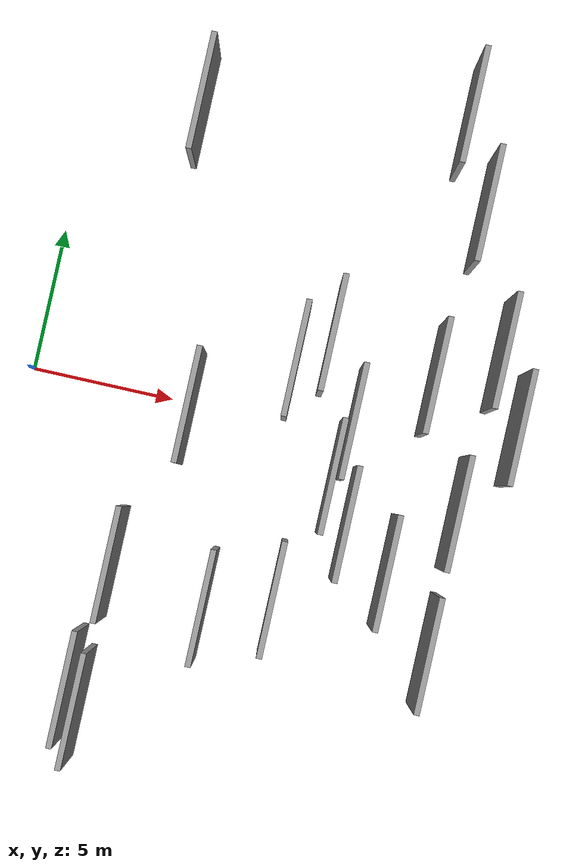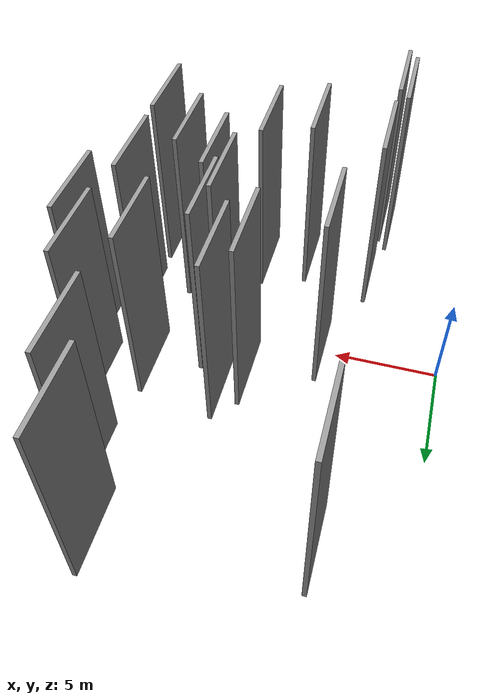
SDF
<sdf version="1.6">
 <world name="default">
  <scene>
   <sky><clouds><speed>12</speed></clouds></sky>
   <ambient>0.4 0.4 0.4 1</ambient>
   <background>0.7 0.7 0.7 1</background>
   <shadows>1</shadows>
  </scene>
  <gravity>0 0 -9.8066</gravity>
  <magnetic_field>6e-06 2.3e-05 -4.2e-05</magnetic_field>
  <physics default="0" name="default_physics" type="ode">
   <ode>
    <solver>
     <type>quick</type>
     <iters>10</iters>
     <sor>1.0</sor>
     <use_dynamic_moi_rescaling>0</use_dynamic_moi_rescaling>
    </solver>
    <constraints>
     <cfm>0</cfm>
     <erp>0.2</erp>
     <contact_max_correcting_vel>100</contact_max_correcting_vel>
     <contact_surface_layer>0.001</contact_surface_layer>
    </constraints>
   </ode>
   <max_step_size>0.004</max_step_size>
   <real_time_factor>1</real_time_factor>
   <real_time_update_rate>250</real_time_update_rate>
  </physics>
  <light name="sun" type="directional">
   <pose>0 0 10 0 0 0</pose>
   <diffuse>0.8 0.8 0.8 1</diffuse>
   <specular>0.2 0.2 0.2 1</specular>
   <attenuation>
    <range>1000</range>
    <constant>0.9</constant>
    <linear>0.01</linear>
    <quadratic>0.001</quadratic>
   </attenuation>
   <direction>-0.5 0.1 -0.9</direction>
  </light>
  <model name="grey_wall_1">
   <static>1</static>
   <pose>13.7205 2.5976 0.0 0.000000 0.000000 1.570796</pose>
   <link name="link">
    <pose>0 0 5.00 0 0 0</pose>
    <collision name="collision"><geometry><box><size>4.00 0.2 10.00</size></box></geometry></collision>
    <visual name="visual">
     <cast_shadows>0</cast_shadows>
     <geometry><box><size>4.00 0.2 10.00</size></box></geometry>
     <material>
      <script>
       <uri>model://grey_wall/materials/scripts</uri>
       <uri>model://grey_wall/materials/textures</uri>
       <name>vrc/grey_wall</name>
      </script>
     </material>
    </visual>
   </link>
  </model>
  <model name="grey_wall_2">
   <static>1</static>
   <pose>16.8466 1.5013 0.0 0.000000 0.000000 1.570796</pose>
   <link name="link">
    <pose>0 0 5.00 0 0 0</pose>
    <collision name="collision"><geometry><box><size>4.00 0.2 10.00</size></box></geometry></collision>
    <visual name="visual">
     <cast_shadows>0</cast_shadows>
     <geometry><box><size>4.00 0.2 10.00</size></box></geometry>
     <material>
      <script>
       <uri>model://grey_wall/materials/scripts</uri>
       <uri>model://grey_wall/materials/textures</uri>
       <name>vrc/grey_wall</name>
      </script>
     </material>
    </visual>
   </link>
  </model>
  <model name="grey_wall_3">
   <static>1</static>
   <pose>9.9424 -5.9270 0.0 0.000000 0.000000 1.570796</pose>
   <link name="link">
    <pose>0 0 5.00 0 0 0</pose>
    <collision name="collision"><geometry><box><size>4.00 0.2 10.00</size></box></geometry></collision>
    <visual name="visual">
     <cast_shadows>0</cast_shadows>
     <geometry><box><size>4.00 0.2 10.00</size></box></geometry>
     <material>
      <script>
       <uri>model://grey_wall/materials/scripts</uri>
       <uri>model://grey_wall/materials/textures</uri>
       <name>vrc/grey_wall</name>
      </script>
     </material>
    </visual>
   </link>
  </model>
  <model name="grey_wall_4">
   <static>1</static>
   <pose>5.7435 -0.1744 0.0 0.000000 0.000000 1.570796</pose>
   <link name="link">
    <pose>0 0 5.00 0 0 0</pose>
    <collision name="collision"><geometry><box><size>4.00 0.2 10.00</size></box></geometry></collision>
    <visual name="visual">
     <cast_shadows>0</cast_shadows>
     <geometry><box><size>4.00 0.2 10.00</size></box></geometry>
     <material>
      <script>
       <uri>model://grey_wall/materials/scripts</uri>
       <uri>model://grey_wall/materials/textures</uri>
       <name>vrc/grey_wall</name>
      </script>
     </material>
    </visual>
   </link>
  </model>
  <model name="grey_wall_5">
   <static>1</static>
   <pose>12.9524 11.7028 0.0 0.000000 0.000000 1.570796</pose>
   <link name="link">
    <pose>0 0 5.00 0 0 0</pose>
    <collision name="collision"><geometry><box><size>4.00 0.2 10.00</size></box></geometry></collision>
    <visual name="visual">
     <cast_shadows>0</cast_shadows>
     <geometry><box><size>4.00 0.2 10.00</size></box></geometry>
     <material>
      <script>
       <uri>model://grey_wall/materials/scripts</uri>
       <uri>model://grey_wall/materials/textures</uri>
       <name>vrc/grey_wall</name>
      </script>
     </material>
    </visual>
   </link>
  </model>
  <model name="grey_wall_6">
   <static>1</static>
   <pose>7.6847 -6.7160 0.0 0.000000 0.000000 1.570796</pose>
   <link name="link">
    <pose>0 0 5.00 0 0 0</pose>
    <collision name="collision"><geometry><box><size>4.00 0.2 10.00</size></box></geometry></collision>
    <visual name="visual">
     <cast_shadows>0</cast_shadows>
     <geometry><box><size>4.00 0.2 10.00</size></box></geometry>
     <material>
      <script>
       <uri>model://grey_wall/materials/scripts</uri>
       <uri>model://grey_wall/materials/textures</uri>
       <name>vrc/grey_wall</name>
      </script>
     </material>
    </visual>
   </link>
  </model>
  <model name="grey_wall_7">
   <static>1</static>
   <pose>11.8424 -2.9235 0.0 0.000000 0.000000 1.570796</pose>
   <link name="link">
    <pose>0 0 5.00 0 0 0</pose>
    <collision name="collision"><geometry><box><size>4.00 0.2 10.00</size></box></geometry></collision>
    <visual name="visual">
     <cast_shadows>0</cast_shadows>
     <geometry><box><size>4.00 0.2 10.00</size></box></geometry>
     <material>
      <script>
       <uri>model://grey_wall/materials/scripts</uri>
       <uri>model://grey_wall/materials/textures</uri>
       <name>vrc/grey_wall</name>
      </script>
     </material>
    </visual>
   </link>
  </model>
  <model name="grey_wall_8">
   <static>1</static>
   <pose>15.4231 -1.7633 0.0 0.000000 0.000000 1.570796</pose>
   <link name="link">
    <pose>0 0 5.00 0 0 0</pose>
    <collision name="collision"><geometry><box><size>4.00 0.2 10.00</size></box></geometry></collision>
    <visual name="visual">
     <cast_shadows>0</cast_shadows>
     <geometry><box><size>4.00 0.2 10.00</size></box></geometry>
     <material>
      <script>
       <uri>model://grey_wall/materials/scripts</uri>
       <uri>model://grey_wall/materials/textures</uri>
       <name>vrc/grey_wall</name>
      </script>
     </material>
    </visual>
   </link>
  </model>
  <model name="grey_wall_9">
   <static>1</static>
   <pose>15.4708 -6.6185 0.0 0.000000 0.000000 1.570796</pose>
   <link name="link">
    <pose>0 0 5.00 0 0 0</pose>
    <collision name="collision"><geometry><box><size>4.00 0.2 10.00</size></box></geometry></collision>
    <visual name="visual">
     <cast_shadows>0</cast_shadows>
     <geometry><box><size>4.00 0.2 10.00</size></box></geometry>
     <material>
      <script>
       <uri>model://grey_wall/materials/scripts</uri>
       <uri>model://grey_wall/materials/textures</uri>
       <name>vrc/grey_wall</name>
      </script>
     </material>
    </visual>
   </link>
  </model>
  <model name="grey_wall_10">
   <static>1</static>
   <pose>14.1570 8.5987 0.0 0.000000 0.000000 1.570796</pose>
   <link name="link">
    <pose>0 0 5.00 0 0 0</pose>
    <collision name="collision"><geometry><box><size>4.00 0.2 10.00</size></box></geometry></collision>
    <visual name="visual">
     <cast_shadows>0</cast_shadows>
     <geometry><box><size>4.00 0.2 10.00</size></box></geometry>
     <material>
      <script>
       <uri>model://grey_wall/materials/scripts</uri>
       <uri>model://grey_wall/materials/textures</uri>
       <name>vrc/grey_wall</name>
      </script>
     </material>
    </visual>
   </link>
  </model>
  <model name="grey_wall_11">
   <static>1</static>
   <pose>8.9793 2.1326 0.0 0.000000 0.000000 1.570796</pose>
   <link name="link">
    <pose>0 0 5.00 0 0 0</pose>
    <collision name="collision"><geometry><box><size>4.00 0.2 10.00</size></box></geometry></collision>
    <visual name="visual">
     <cast_shadows>0</cast_shadows>
     <geometry><box><size>4.00 0.2 10.00</size></box></geometry>
     <material>
      <script>
       <uri>model://grey_wall/materials/scripts</uri>
       <uri>model://grey_wall/materials/textures</uri>
       <name>vrc/grey_wall</name>
      </script>
     </material>
    </visual>
   </link>
  </model>
  <model name="grey_wall_12">
   <static>1</static>
   <pose>4.2838 -5.9860 0.0 0.000000 0.000000 1.570796</pose>
   <link name="link">
    <pose>0 0 5.00 0 0 0</pose>
    <collision name="collision"><geometry><box><size>4.00 0.2 10.00</size></box></geometry></collision>
    <visual name="visual">
     <cast_shadows>0</cast_shadows>
     <geometry><box><size>4.00 0.2 10.00</size></box></geometry>
     <material>
      <script>
       <uri>model://grey_wall/materials/scripts</uri>
       <uri>model://grey_wall/materials/textures</uri>
       <name>vrc/grey_wall</name>
      </script>
     </material>
    </visual>
   </link>
  </model>
  <model name="grey_wall_13">
   <static>1</static>
   <pose>11.3128 0.4939 0.0 0.000000 0.000000 1.570796</pose>
   <link name="link">
    <pose>0 0 5.00 0 0 0</pose>
    <collision name="collision"><geometry><box><size>4.00 0.2 10.00</size></box></geometry></collision>
    <visual name="visual">
     <cast_shadows>0</cast_shadows>
     <geometry><box><size>4.00 0.2 10.00</size></box></geometry>
     <material>
      <script>
       <uri>model://grey_wall/materials/scripts</uri>
       <uri>model://grey_wall/materials/textures</uri>
       <name>vrc/grey_wall</name>
      </script>
     </material>
    </visual>
   </link>
  </model>
  <model name="grey_wall_14">
   <static>1</static>
   <pose>15.7968 3.9190 0.0 0.000000 0.000000 1.570796</pose>
   <link name="link">
    <pose>0 0 5.00 0 0 0</pose>
    <collision name="collision"><geometry><box><size>4.00 0.2 10.00</size></box></geometry></collision>
    <visual name="visual">
     <cast_shadows>0</cast_shadows>
     <geometry><box><size>4.00 0.2 10.00</size></box></geometry>
     <material>
      <script>
       <uri>model://grey_wall/materials/scripts</uri>
       <uri>model://grey_wall/materials/textures</uri>
       <name>vrc/grey_wall</name>
      </script>
     </material>
    </visual>
   </link>
  </model>
  <model name="grey_wall_15">
   <static>1</static>
   <pose>9.9951 3.2353 0.0 0.000000 0.000000 1.570796</pose>
   <link name="link">
    <pose>0 0 5.00 0 0 0</pose>
    <collision name="collision"><geometry><box><size>4.00 0.2 10.00</size></box></geometry></collision>
    <visual name="visual">
     <cast_shadows>0</cast_shadows>
     <geometry><box><size>4.00 0.2 10.00</size></box></geometry>
     <material>
      <script>
       <uri>model://grey_wall/materials/scripts</uri>
       <uri>model://grey_wall/materials/textures</uri>
       <name>vrc/grey_wall</name>
      </script>
     </material>
    </visual>
   </link>
  </model>
  <model name="grey_wall_16">
   <static>1</static>
   <pose>4.2090 -11.0206 0.0 0.000000 0.000000 1.570796</pose>
   <link name="link">
    <pose>0 0 5.00 0 0 0</pose>
    <collision name="collision"><geometry><box><size>4.00 0.2 10.00</size></box></geometry></collision>
    <visual name="visual">
     <cast_shadows>0</cast_shadows>
     <geometry><box><size>4.00 0.2 10.00</size></box></geometry>
     <material>
      <script>
       <uri>model://grey_wall/materials/scripts</uri>
       <uri>model://grey_wall/materials/textures</uri>
       <name>vrc/grey_wall</name>
      </script>
     </material>
    </visual>
   </link>
  </model>
  <model name="grey_wall_17">
   <static>1</static>
   <pose>13.5219 -4.2298 0.0 0.000000 0.000000 1.570796</pose>
   <link name="link">
    <pose>0 0 5.00 0 0 0</pose>
    <collision name="collision"><geometry><box><size>4.00 0.2 10.00</size></box></geometry></collision>
    <visual name="visual">
     <cast_shadows>0</cast_shadows>
     <geometry><box><size>4.00 0.2 10.00</size></box></geometry>
     <material>
      <script>
       <uri>model://grey_wall/materials/scripts</uri>
       <uri>model://grey_wall/materials/textures</uri>
       <name>vrc/grey_wall</name>
      </script>
     </material>
    </visual>
   </link>
  </model>
  <model name="grey_wall_18">
   <static>1</static>
   <pose>3.9309 10.1582 0.0 0.000000 0.000000 1.570796</pose>
   <link name="link">
    <pose>0 0 5.00 0 0 0</pose>
    <collision name="collision"><geometry><box><size>4.00 0.2 10.00</size></box></geometry></collision>
    <visual name="visual">
     <cast_shadows>0</cast_shadows>
     <geometry><box><size>4.00 0.2 10.00</size></box></geometry>
     <material>
      <script>
       <uri>model://grey_wall/materials/scripts</uri>
       <uri>model://grey_wall/materials/textures</uri>
       <name>vrc/grey_wall</name>
      </script>
     </material>
    </visual>
   </link>
  </model>
  <model name="grey_wall_19">
   <static>1</static>
   <pose>3.7610 -10.3694 0.0 0.000000 0.000000 1.570796</pose>
   <link name="link">
    <pose>0 0 5.00 0 0 0</pose>
    <collision name="collision"><geometry><box><size>4.00 0.2 10.00</size></box></geometry></collision>
    <visual name="visual">
     <cast_shadows>0</cast_shadows>
     <geometry><box><size>4.00 0.2 10.00</size></box></geometry>
     <material>
      <script>
       <uri>model://grey_wall/materials/scripts</uri>
       <uri>model://grey_wall/materials/textures</uri>
       <name>vrc/grey_wall</name>
      </script>
     </material>
    </visual>
   </link>
  </model>
  <model name="grey_wall_20">
   <static>1</static>
   <pose>11.0295 -1.4592 0.0 0.000000 0.000000 1.570796</pose>
   <link name="link">
    <pose>0 0 5.00 0 0 0</pose>
    <collision name="collision"><geometry><box><size>4.00 0.2 10.00</size></box></geometry></collision>
    <visual name="visual">
     <cast_shadows>0</cast_shadows>
     <geometry><box><size>4.00 0.2 10.00</size></box></geometry>
     <material>
      <script>
       <uri>model://grey_wall/materials/scripts</uri>
       <uri>model://grey_wall/materials/textures</uri>
       <name>vrc/grey_wall</name>
      </script>
     </material>
    </visual>
   </link>
  </model>
 </world>
</sdf>
